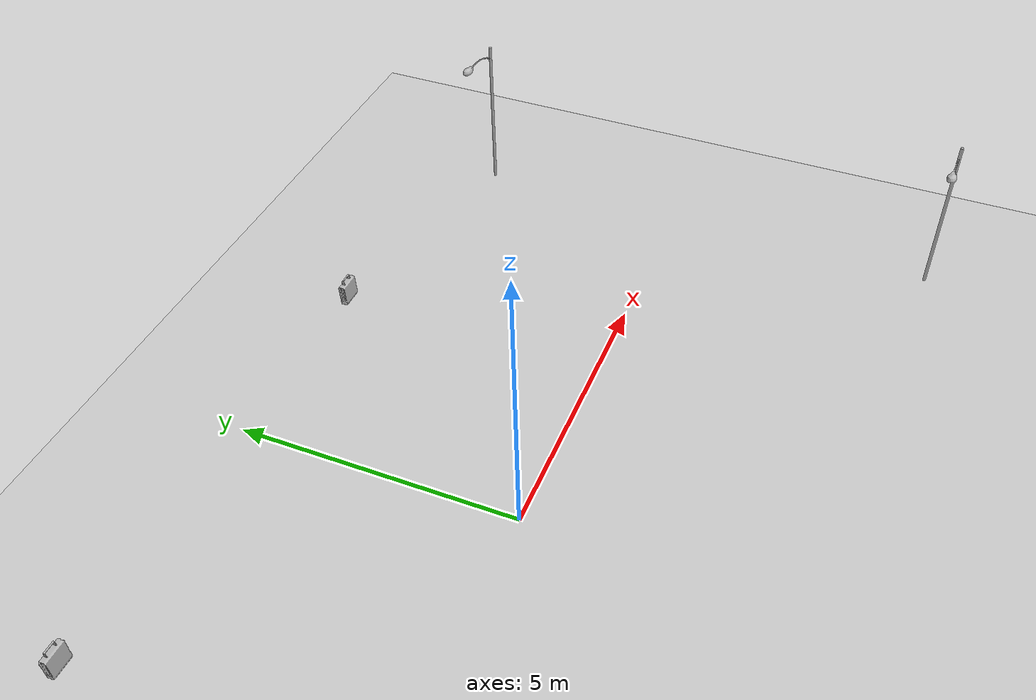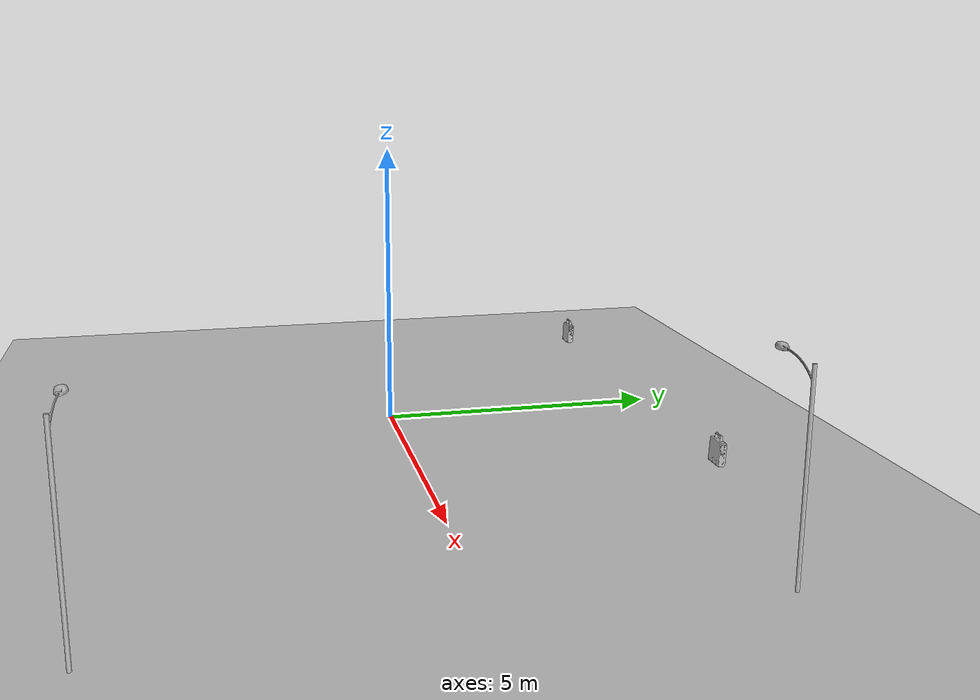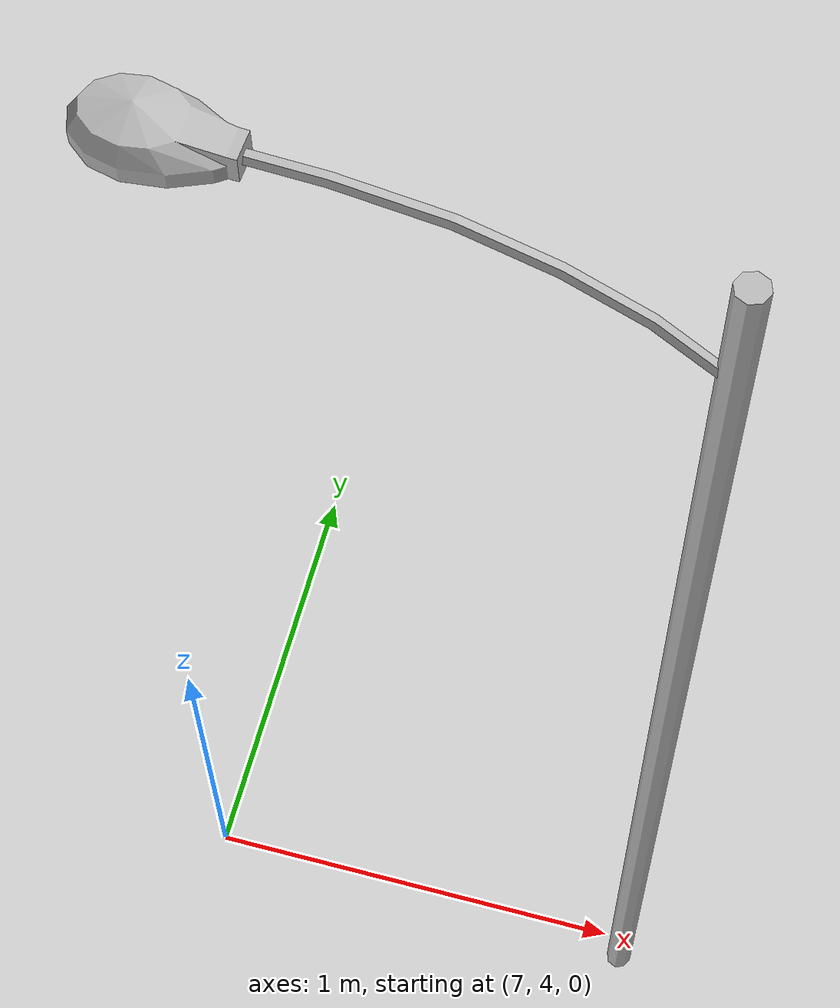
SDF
<sdf version="1.6">
 <world name="default">
  <light name="sun" type="directional">
   <pose>0 0 10 0 -0 0</pose>
   <diffuse>0.8 0.8 0.8 1</diffuse>
   <specular>0.1 0.1 0.1 1</specular>
   <attenuation>
    <range>1000</range>
    <constant>0.9</constant>
    <linear>0.01</linear>
    <quadratic>0.001</quadratic>
   </attenuation>
   <direction>-0.5 0.5 -1</direction>
  </light>
  <model name="ground_plane">
   <static>1</static>
   <link name="link">
    <collision name="collision">
     <geometry><plane><normal>0 0 1</normal><size>100 100</size></plane></geometry>
     <surface><friction><ode><mu>100</mu><mu2>50</mu2></ode></friction></surface>
    </collision>
    <visual name="visual">
     <cast_shadows>0</cast_shadows>
     <geometry><plane><normal>0 0 1</normal><size>100 100</size></plane></geometry>
     <material>
      <script><uri>file://media/materials/scripts/gazebo.material</uri><name>Gazebo/Grey</name></script>
     </material>
    </visual>
   </link>
  </model>
  <gravity>0 0 -9.8</gravity>
  <magnetic_field>6e-06 2.3e-05 -4.2e-05</magnetic_field>
  <atmosphere type="adiabatic"/>
  <physics name="default_physics" default="0" type="ode">
   <max_step_size>0.001</max_step_size>
   <real_time_factor>1</real_time_factor>
   <real_time_update_rate>1000</real_time_update_rate>
  </physics>
  <scene><ambient>0.4 0.4 0.4 1</ambient><background>0.7 0.7 0.7 1</background><shadows>1</shadows></scene>
  <spherical_coordinates>
   <surface_model>EARTH_WGS84</surface_model>
   <latitude_deg>0</latitude_deg>
   <longitude_deg>0</longitude_deg>
   <elevation>0</elevation>
   <heading_deg>0</heading_deg>
  </spherical_coordinates>
  <model name="Lamp Post">
   <static>1</static>
   <link name="link">
    <collision name="collision">
     <geometry><mesh><uri>model://lamp_post/meshes/lamp_post.dae</uri><scale>1 1 1</scale></mesh></geometry>
    </collision>
    <visual name="visual">
     <geometry><mesh><uri>model://lamp_post/meshes/lamp_post.dae</uri><scale>1 1 1</scale></mesh></geometry>
    </visual>
   </link>
   <pose>7.99998 -4.98226 0 0 0 -1.62697</pose>
  </model>
  <model name="Lamp Post_0">
   <static>1</static>
   <link name="link">
    <collision name="collision">
     <geometry><mesh><uri>model://lamp_post/meshes/lamp_post.dae</uri><scale>1 1 1</scale></mesh></geometry>
    </collision>
    <visual name="visual">
     <geometry><mesh><uri>model://lamp_post/meshes/lamp_post.dae</uri><scale>1 1 1</scale></mesh></geometry>
    </visual>
   </link>
   <pose>8.04048 3.953 0 0 0 -1.62697</pose>
  </model>
  <model name="solar_panel">
   <link name="link">
    <pose>0 0 0.065 0 -0 0</pose>
    <inertial>
     <mass>1000</mass>
     <inertia><ixx>100</ixx><ixy>0</ixy><ixz>0</ixz><iyy>1000</iyy><iyz>0</iyz><izz>100</izz></inertia>
    </inertial>
    <collision name="collision">
     <geometry><mesh><uri>model://solar_panel/meshes/solar_panel.dae</uri><scale>1 1 1</scale></mesh></geometry>
    </collision>
    <visual name="visual">
     <geometry><mesh><uri>model://solar_panel/meshes/solar_panel.dae</uri><scale>1 1 1</scale></mesh></geometry>
    </visual>
   </link>
   <pose>-4.66319 4.99387 -0.070901 -0.041339 4e-05 0.000526</pose>
  </model>
  <model name="solar_panel_0">
   <link name="link">
    <pose>0 0 0.065 0 -0 0</pose>
    <inertial>
     <mass>1000</mass>
     <inertia><ixx>100</ixx><ixy>0</ixy><ixz>0</ixz><iyy>1000</iyy><iyz>0</iyz><izz>100</izz></inertia>
    </inertial>
    <collision name="collision">
     <geometry><mesh><uri>model://solar_panel/meshes/solar_panel.dae</uri><scale>1 1 1</scale></mesh></geometry>
    </collision>
    <visual name="visual">
     <geometry><mesh><uri>model://solar_panel/meshes/solar_panel.dae</uri><scale>1 1 1</scale></mesh></geometry>
    </visual>
   </link>
   <pose>3.53072 4.94593 -0.070901 -0.041344 5e-05 0.000266</pose>
  </model>
 </world>
</sdf>
